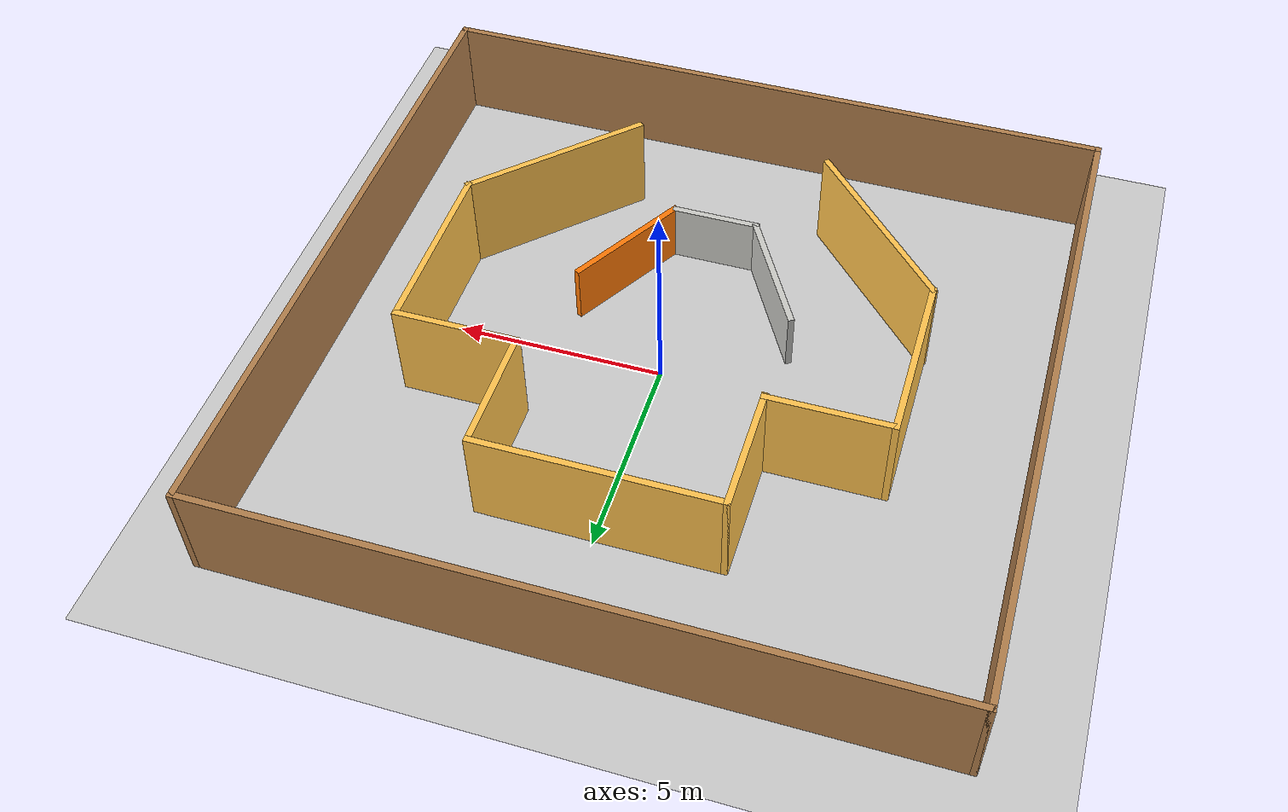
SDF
<sdf version="1.6">
 <world name="default">
  <light name="sun" type="directional">
   <pose>0 0 10 0 -0 0</pose>
   <diffuse>0.8 0.8 0.8 1</diffuse>
   <specular>0.1 0.1 0.1 1</specular>
   <attenuation>
    <range>1000</range>
    <constant>0.9</constant>
    <linear>0.01</linear>
    <quadratic>0.001</quadratic>
   </attenuation>
   <direction>-0.5 0.5 -1</direction>
  </light>
  <model name="ground_plane">
   <static>1</static>
   <link name="link">
    <collision name="collision">
     <geometry><plane><normal>0 0 1</normal><size>100 100</size></plane></geometry>
     <surface><friction><ode><mu>100</mu><mu2>50</mu2></ode></friction></surface>
    </collision>
    <visual name="visual">
     <cast_shadows>0</cast_shadows>
     <geometry><plane><normal>0 0 1</normal><size>100 100</size></plane></geometry>
     <material>
      <script><uri>file://media/materials/scripts/gazebo.material</uri><name>Gazebo/Grey</name></script>
     </material>
    </visual>
   </link>
  </model>
  <gravity>0 0 -9.8</gravity>
  <magnetic_field>6e-06 2.3e-05 -4.2e-05</magnetic_field>
  <atmosphere type="adiabatic"/>
  <physics name="default_physics" default="0" type="ode">
   <max_step_size>0.001</max_step_size>
   <real_time_factor>1</real_time_factor>
   <real_time_update_rate>1000</real_time_update_rate>
  </physics>
  <scene><ambient>0.4 0.4 0.4 1</ambient><background>0.7 0.7 0.7 1</background><shadows>1</shadows></scene>
  <spherical_coordinates>
   <surface_model>EARTH_WGS84</surface_model>
   <latitude_deg>0</latitude_deg>
   <longitude_deg>0</longitude_deg>
   <elevation>0</elevation>
   <heading_deg>0</heading_deg>
  </spherical_coordinates>
  <model name="model">
   <pose>-0.45586 -0.030375 0 0 -0 0</pose>
   <link name="Wall_10">
    <collision name="Wall_10_Collision">
     <geometry><box><size>4.25 0.15 2.5</size></box></geometry>
     <pose>0 0 1.25 0 -0 0</pose>
    </collision>
    <visual name="Wall_10_Visual">
     <pose>0 0 1.25 0 -0 0</pose>
     <geometry><box><size>4.25 0.15 2.5</size></box></geometry>
     <material>
      <script><uri>file://media/materials/scripts/gazebo.material</uri><name>Gazebo/Grey</name></script>
      <ambient>1 0.764706 0.305882 1</ambient>
     </material>
    </visual>
    <pose>-5.32469 -0.033737 0 0 -0 1.5708</pose>
   </link>
   <link name="Wall_11">
    <collision name="Wall_11_Collision">
     <geometry><box><size>3 0.15 2.5</size></box></geometry>
     <pose>0 0 1.25 0 -0 0</pose>
    </collision>
    <visual name="Wall_11_Visual">
     <pose>0 0 1.25 0 -0 0</pose>
     <geometry><box><size>3 0.15 2.5</size></box></geometry>
     <material>
      <script><uri>file://media/materials/scripts/gazebo.material</uri><name>Gazebo/Grey</name></script>
      <ambient>1 0.764706 0.305882 1</ambient>
     </material>
    </visual>
    <pose>-3.89969 2.01626 0 0 -0 0</pose>
   </link>
   <link name="Wall_12">
    <collision name="Wall_12_Collision">
     <geometry><box><size>3.0561 0.15 2.5</size></box></geometry>
     <pose>0 0 1.25 0 -0 0</pose>
    </collision>
    <visual name="Wall_12_Visual">
     <pose>0 0 1.25 0 -0 0</pose>
     <geometry><box><size>3.0561 0.15 2.5</size></box></geometry>
     <material>
      <script><uri>file://media/materials/scripts/gazebo.material</uri><name>Gazebo/Grey</name></script>
      <ambient>1 0.764706 0.305882 1</ambient>
     </material>
    </visual>
    <pose>-2.47469 3.44126 0 0 -0 1.5708</pose>
   </link>
   <link name="Wall_13">
    <collision name="Wall_13_Collision">
     <geometry><box><size>5.75 0.15 2.5</size></box></geometry>
     <pose>0 0 1.25 0 -0 0</pose>
    </collision>
    <visual name="Wall_13_Visual">
     <pose>0 0 1.25 0 -0 0</pose>
     <geometry><box><size>5.75 0.15 2.5</size></box></geometry>
     <material>
      <script><uri>file://media/materials/scripts/gazebo.material</uri><name>Gazebo/Grey</name></script>
      <ambient>1 0.764706 0.305882 1</ambient>
     </material>
    </visual>
    <pose>0.32531 4.89431 0 0 -0 0</pose>
   </link>
   <link name="Wall_14">
    <collision name="Wall_14_Collision">
     <geometry><box><size>2.99241 0.15 2.5</size></box></geometry>
     <pose>0 0 1.25 0 -0 0</pose>
    </collision>
    <visual name="Wall_14_Visual">
     <pose>0 0 1.25 0 -0 0</pose>
     <geometry><box><size>2.99241 0.15 2.5</size></box></geometry>
     <material>
      <script><uri>file://media/materials/scripts/gazebo.material</uri><name>Gazebo/Grey</name></script>
      <ambient>1 0.764706 0.305882 1</ambient>
     </material>
    </visual>
    <pose>3.12531 3.44506 0 0 0 -1.5708</pose>
   </link>
   <link name="Wall_15">
    <collision name="Wall_15_Collision">
     <geometry><box><size>3 0.15 2.5</size></box></geometry>
     <pose>0 0 1.25 0 -0 0</pose>
    </collision>
    <visual name="Wall_15_Visual">
     <pose>0 0 1.25 0 -0 0</pose>
     <geometry><box><size>3 0.15 2.5</size></box></geometry>
     <material>
      <script><uri>file://media/materials/scripts/gazebo.material</uri><name>Gazebo/Grey</name></script>
      <ambient>1 0.764706 0.305882 1</ambient>
     </material>
    </visual>
    <pose>4.55031 2.02386 0 0 -0 0</pose>
   </link>
   <link name="Wall_16">
    <collision name="Wall_16_Collision">
     <geometry><box><size>4.5 0.15 2.5</size></box></geometry>
     <pose>0 0 1.25 0 -0 0</pose>
    </collision>
    <visual name="Wall_16_Visual">
     <pose>0 0 1.25 0 -0 0</pose>
     <geometry><box><size>4.5 0.15 2.5</size></box></geometry>
     <material>
      <script><uri>file://media/materials/scripts/gazebo.material</uri><name>Gazebo/Grey</name></script>
      <ambient>1 0.764706 0.305882 1</ambient>
     </material>
    </visual>
    <pose>5.97531 -0.151144 0 0 0 -1.5708</pose>
   </link>
   <link name="Wall_17">
    <collision name="Wall_17_Collision">
     <geometry><box><size>4.75 0.15 2.5</size></box></geometry>
     <pose>0 0 1.25 0 -0 0</pose>
    </collision>
    <visual name="Wall_17_Visual">
     <pose>0 0 1.25 0 -0 0</pose>
     <geometry><box><size>4.75 0.15 2.5</size></box></geometry>
     <material>
      <script><uri>file://media/materials/scripts/gazebo.material</uri><name>Gazebo/Grey</name></script>
      <ambient>1 0.764706 0.305882 1</ambient>
     </material>
    </visual>
    <pose>4.34896 -3.95249 0 0 0 -2.35619</pose>
   </link>
   <link name="Wall_19">
    <collision name="Wall_19_Collision">
     <geometry><box><size>3.2865 0.15 1.5</size></box></geometry>
     <pose>0 0 0.75 0 -0 0</pose>
    </collision>
    <visual name="Wall_19_Visual">
     <pose>0 0 0.75 0 -0 0</pose>
     <geometry><box><size>3.2865 0.15 1.5</size></box></geometry>
     <material>
      <script><uri>file://media/materials/scripts/gazebo.material</uri><name>Gazebo/CeilingTiled</name></script>
      <ambient>0.996078 0.47451 0.0196078 1</ambient>
     </material>
    </visual>
    <pose>-1.51014 -2.59112 0 0 0 -1.05394</pose>
   </link>
   <link name="Wall_20">
    <collision name="Wall_20_Collision">
     <geometry><box><size>2.1584 0.15 1.5</size></box></geometry>
     <pose>0 0 0.75 0 -0 0</pose>
    </collision>
    <visual name="Wall_20_Visual">
     <pose>0 0 0.75 0 -0 0</pose>
     <geometry><box><size>2.1584 0.15 1.5</size></box></geometry>
     <material>
      <script><uri>file://media/materials/scripts/gazebo.material</uri><name>Gazebo/CeilingTiled</name></script>
      <ambient>0.996078 0.47451 0.0196078 1</ambient>
     </material>
    </visual>
    <pose>0.269059 -3.95478 0 0 0 -0.000157</pose>
   </link>
   <link name="Wall_21">
    <collision name="Wall_21_Collision">
     <geometry><box><size>3.25028 0.15 1.5</size></box></geometry>
     <pose>0 0 0.75 0 -0 0</pose>
    </collision>
    <visual name="Wall_21_Visual">
     <pose>0 0 0.75 0 -0 0</pose>
     <geometry><box><size>3.25028 0.15 1.5</size></box></geometry>
     <material>
      <script><uri>file://media/materials/scripts/gazebo.material</uri><name>Gazebo/Grey</name></script>
      <ambient>0.996078 0.47451 0.0196078 1</ambient>
     </material>
    </visual>
    <pose>2.09091 -2.61244 0 0 -0 1.04725</pose>
   </link>
   <link name="Wall_4">
    <collision name="Wall_4_Collision">
     <geometry><box><size>16 0.15 2.5</size></box></geometry>
     <pose>0 0 1.25 0 -0 0</pose>
    </collision>
    <visual name="Wall_4_Visual">
     <pose>0 0 1.25 0 -0 0</pose>
     <geometry><box><size>16 0.15 2.5</size></box></geometry>
     <material>
      <script><uri>file://media/materials/scripts/gazebo.material</uri><name>Gazebo/Wood</name></script>
      <ambient>1 1 1 1</ambient>
     </material>
    </visual>
    <pose>-8.3 0 0 0 -0 1.5708</pose>
   </link>
   <link name="Wall_5">
    <collision name="Wall_5_Collision">
     <geometry><box><size>16.75 0.15 2.5</size></box></geometry>
     <pose>0 0 1.25 0 -0 0</pose>
    </collision>
    <visual name="Wall_5_Visual">
     <pose>0 0 1.25 0 -0 0</pose>
     <geometry><box><size>16.75 0.15 2.5</size></box></geometry>
     <material>
      <script><uri>file://media/materials/scripts/gazebo.material</uri><name>Gazebo/Wood</name></script>
      <ambient>1 1 1 1</ambient>
     </material>
    </visual>
    <pose>0 7.925 0 0 -0 0</pose>
   </link>
   <link name="Wall_6">
    <collision name="Wall_6_Collision">
     <geometry><box><size>16 0.15 2.5</size></box></geometry>
     <pose>0 0 1.25 0 -0 0</pose>
    </collision>
    <visual name="Wall_6_Visual">
     <pose>0 0 1.25 0 -0 0</pose>
     <geometry><box><size>16 0.15 2.5</size></box></geometry>
     <material>
      <script><uri>file://media/materials/scripts/gazebo.material</uri><name>Gazebo/Wood</name></script>
      <ambient>1 1 1 1</ambient>
     </material>
    </visual>
    <pose>8.3 0 0 0 0 -1.5708</pose>
   </link>
   <link name="Wall_7">
    <collision name="Wall_7_Collision">
     <geometry><box><size>16.75 0.15 2.5</size></box></geometry>
     <pose>0 0 1.25 0 -0 0</pose>
    </collision>
    <visual name="Wall_7_Visual">
     <pose>0 0 1.25 0 -0 0</pose>
     <geometry><box><size>16.75 0.15 2.5</size></box></geometry>
     <material>
      <script><uri>file://media/materials/scripts/gazebo.material</uri><name>Gazebo/Wood</name></script>
      <ambient>1 1 1 1</ambient>
     </material>
    </visual>
    <pose>0 -7.925 0 0 -0 3.14159</pose>
   </link>
   <link name="Wall_9">
    <collision name="Wall_9_Collision">
     <geometry><box><size>4.92449 0.15 2.5</size></box></geometry>
     <pose>0 0 1.25 0 -0 0</pose>
    </collision>
    <visual name="Wall_9_Visual">
     <pose>0 0 1.25 0 -0 0</pose>
     <geometry><box><size>4.92449 0.15 2.5</size></box></geometry>
     <material>
      <script><uri>file://media/materials/scripts/gazebo.material</uri><name>Gazebo/Grey</name></script>
      <ambient>1 0.764706 0.305882 1</ambient>
     </material>
    </visual>
    <pose>-3.69835 -3.83129 0 0 -0 2.32029</pose>
   </link>
   <static>1</static>
  </model>
  <plugin filename="libcollision_map_creator.so" name="collision_map_creator"/>
 </world>
</sdf>
